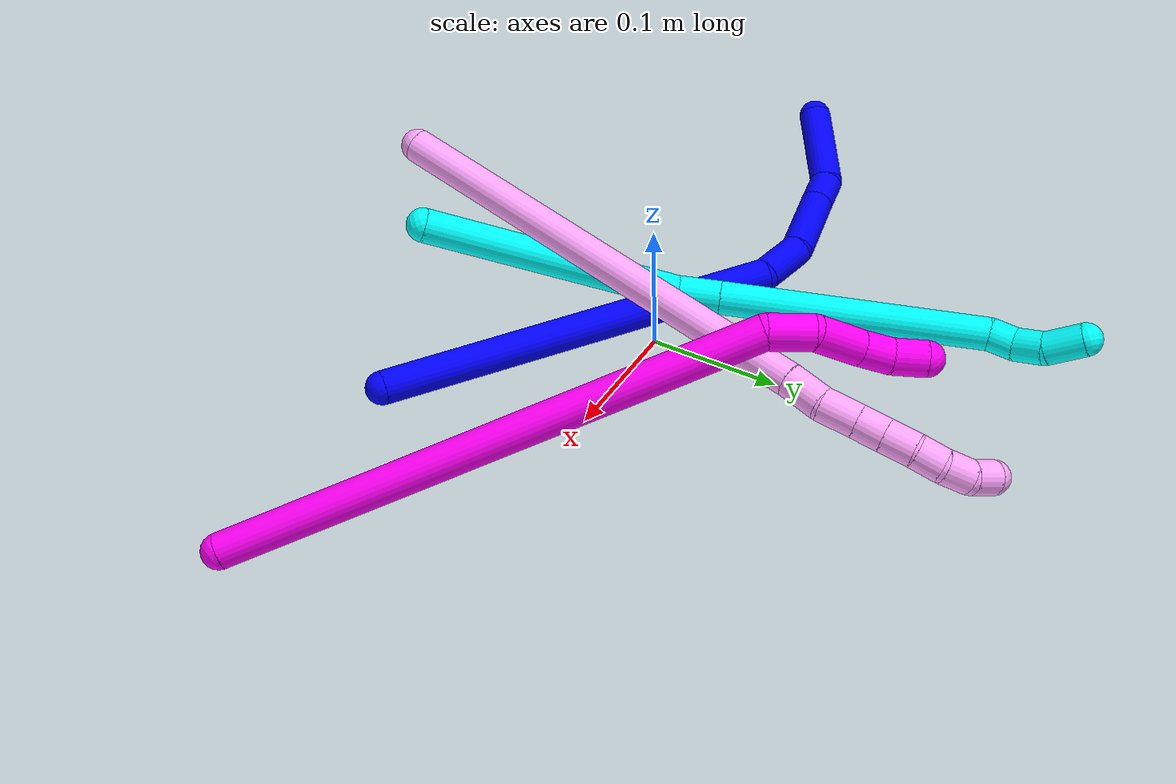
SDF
<sdf version="1.7">
 <world name="default">
  <model name="1">
   <static>0</static>
   <link name="1">
    <collision name="collision-cylinder-e_1_1_4">
     <pose>-0.103883 0.086547 -0.072348 -2.26707 -0.744257 1.39145</pose>
     <geometry><cylinder><radius>0.0125</radius><length>0.306699</length></cylinder></geometry>
     <surface>
      <friction><ode><mu>1.16</mu><mu2>1.16</mu2><slip1>0</slip1><slip2>0</slip2></ode></friction>
      <contact><ode><kp>1e+06</kp><kd>1</kd><max_vel>0</max_vel><min_depth>0.001</min_depth></ode></contact>
     </surface>
    </collision>
    <visual name="visual-cylinder-e_1_1_4">
     <pose>-0.103883 0.086547 -0.072348 -2.26707 -0.744257 1.39145</pose>
     <geometry><cylinder><radius>0.0125</radius><length>0.306699</length></cylinder></geometry>
     <material><ambient>0 0 1 1</ambient></material>
    </visual>
    <collision name="collision-cylinder-e_2_4_5">
     <pose>-0.225947 0.177052 -0.152843 -2.68928 -1.10852 2.42979</pose>
     <geometry><cylinder><radius>0.0125</radius><length>0.040625</length></cylinder></geometry>
     <surface>
      <friction><ode><mu>1.16</mu><mu2>1.16</mu2><slip1>0</slip1><slip2>0</slip2></ode></friction>
      <contact><ode><kp>1e+06</kp><kd>1</kd><max_vel>0</max_vel><min_depth>0.001</min_depth></ode></contact>
     </surface>
    </collision>
    <visual name="visual-cylinder-e_2_4_5">
     <pose>-0.225947 0.177052 -0.152843 -2.68928 -1.10852 2.42979</pose>
     <geometry><cylinder><radius>0.0125</radius><length>0.040625</length></cylinder></geometry>
     <material><ambient>0 0 1 1</ambient></material>
    </visual>
    <collision name="collision-cylinder-e_3_5_6">
     <pose>-0.272981 0.176731 -0.167923 2.58836 -1.29563 -2.4238</pose>
     <geometry><cylinder><radius>0.0125</radius><length>0.059963</length></cylinder></geometry>
     <surface>
      <friction><ode><mu>1.16</mu><mu2>1.16</mu2><slip1>0</slip1><slip2>0</slip2></ode></friction>
      <contact><ode><kp>1e+06</kp><kd>1</kd><max_vel>0</max_vel><min_depth>0.001</min_depth></ode></contact>
     </surface>
    </collision>
    <visual name="visual-cylinder-e_3_5_6">
     <pose>-0.272981 0.176731 -0.167923 2.58836 -1.29563 -2.4238</pose>
     <geometry><cylinder><radius>0.0125</radius><length>0.059963</length></cylinder></geometry>
     <material><ambient>0 0 1 1</ambient></material>
    </visual>
    <collision name="collision-cylinder-e_4_6_7">
     <pose>-0.313863 0.172143 -0.176282 2.92908 -1.44994 -2.90196</pose>
     <geometry><cylinder><radius>0.0125</radius><length>0.024234</length></cylinder></geometry>
     <surface>
      <friction><ode><mu>1.16</mu><mu2>1.16</mu2><slip1>0</slip1><slip2>0</slip2></ode></friction>
      <contact><ode><kp>1e+06</kp><kd>1</kd><max_vel>0</max_vel><min_depth>0.001</min_depth></ode></contact>
     </surface>
    </collision>
    <visual name="visual-cylinder-e_4_6_7">
     <pose>-0.313863 0.172143 -0.176282 2.92908 -1.44994 -2.90196</pose>
     <geometry><cylinder><radius>0.0125</radius><length>0.024234</length></cylinder></geometry>
     <material><ambient>0 0 1 1</ambient></material>
    </visual>
    <collision name="collision-cylinder-e_5_7_2">
     <pose>-0.356951 0.158446 -0.172378 1.19183 -1.13638 -0.817168</pose>
     <geometry><cylinder><radius>0.0125</radius><length>0.068478</length></cylinder></geometry>
     <surface>
      <friction><ode><mu>1.16</mu><mu2>1.16</mu2><slip1>0</slip1><slip2>0</slip2></ode></friction>
      <contact><ode><kp>1e+06</kp><kd>1</kd><max_vel>0</max_vel><min_depth>0.001</min_depth></ode></contact>
     </surface>
    </collision>
    <visual name="visual-cylinder-e_5_7_2">
     <pose>-0.356951 0.158446 -0.172378 1.19183 -1.13638 -0.817168</pose>
     <geometry><cylinder><radius>0.0125</radius><length>0.068478</length></cylinder></geometry>
     <material><ambient>0 0 1 1</ambient></material>
    </visual>
    <collision name="collision-sphere-2">
     <pose>-0.388009 0.145058 -0.167047 0 -0 0</pose>
     <geometry><sphere><radius>0.0125</radius></sphere></geometry>
     <surface>
      <friction><ode><mu>1.16</mu><mu2>1.16</mu2><slip1>0</slip1><slip2>0</slip2></ode></friction>
      <contact><ode><kp>1e+06</kp><kd>1</kd><max_vel>0</max_vel><min_depth>0.001</min_depth></ode></contact>
     </surface>
    </collision>
    <visual name="visual-sphere-2">
     <pose>-0.388009 0.145058 -0.167047 0 -0 0</pose>
     <geometry><sphere><radius>0.0125</radius></sphere></geometry>
     <material><ambient>0 0 1 1</ambient></material>
    </visual>
    <collision name="collision-sphere-7">
     <pose>-0.325892 0.171835 -0.17771 0 -0 0</pose>
     <geometry><sphere><radius>0.0125</radius></sphere></geometry>
     <surface>
      <friction><ode><mu>1.16</mu><mu2>1.16</mu2><slip1>0</slip1><slip2>0</slip2></ode></friction>
      <contact><ode><kp>1e+06</kp><kd>1</kd><max_vel>0</max_vel><min_depth>0.001</min_depth></ode></contact>
     </surface>
    </collision>
    <visual name="visual-sphere-7">
     <pose>-0.325892 0.171835 -0.17771 0 -0 0</pose>
     <geometry><sphere><radius>0.0125</radius></sphere></geometry>
     <material><ambient>0 0 1 1</ambient></material>
    </visual>
    <collision name="collision-sphere-6">
     <pose>-0.301835 0.172451 -0.174854 0 -0 0</pose>
     <geometry><sphere><radius>0.0125</radius></sphere></geometry>
     <surface>
      <friction><ode><mu>1.16</mu><mu2>1.16</mu2><slip1>0</slip1><slip2>0</slip2></ode></friction>
      <contact><ode><kp>1e+06</kp><kd>1</kd><max_vel>0</max_vel><min_depth>0.001</min_depth></ode></contact>
     </surface>
    </collision>
    <visual name="visual-sphere-6">
     <pose>-0.301835 0.172451 -0.174854 0 -0 0</pose>
     <geometry><sphere><radius>0.0125</radius></sphere></geometry>
     <material><ambient>0 0 1 1</ambient></material>
    </visual>
    <collision name="collision-sphere-5">
     <pose>-0.244127 0.181012 -0.160991 0 -0 0</pose>
     <geometry><sphere><radius>0.0125</radius></sphere></geometry>
     <surface>
      <friction><ode><mu>1.16</mu><mu2>1.16</mu2><slip1>0</slip1><slip2>0</slip2></ode></friction>
      <contact><ode><kp>1e+06</kp><kd>1</kd><max_vel>0</max_vel><min_depth>0.001</min_depth></ode></contact>
     </surface>
    </collision>
    <visual name="visual-sphere-5">
     <pose>-0.244127 0.181012 -0.160991 0 -0 0</pose>
     <geometry><sphere><radius>0.0125</radius></sphere></geometry>
     <material><ambient>0 0 1 1</ambient></material>
    </visual>
    <collision name="collision-sphere-1">
     <geometry><sphere><radius>0.0125</radius></sphere></geometry>
     <surface>
      <friction><ode><mu>1.16</mu><mu2>1.16</mu2><slip1>0</slip1><slip2>0</slip2></ode></friction>
      <contact><ode><kp>1e+06</kp><kd>1</kd><max_vel>0</max_vel><min_depth>0.001</min_depth></ode></contact>
     </surface>
    </collision>
    <visual name="visual-sphere-1">
     <geometry><sphere><radius>0.0125</radius></sphere></geometry>
     <material><ambient>0 0 1 1</ambient></material>
    </visual>
    <collision name="collision-sphere-4">
     <pose>-0.207766 0.173093 -0.144695 0 -0 0</pose>
     <geometry><sphere><radius>0.0125</radius></sphere></geometry>
     <surface>
      <friction><ode><mu>1.16</mu><mu2>1.16</mu2><slip1>0</slip1><slip2>0</slip2></ode></friction>
      <contact><ode><kp>1e+06</kp><kd>1</kd><max_vel>0</max_vel><min_depth>0.001</min_depth></ode></contact>
     </surface>
    </collision>
    <visual name="visual-sphere-4">
     <pose>-0.207766 0.173093 -0.144695 0 -0 0</pose>
     <geometry><sphere><radius>0.0125</radius></sphere></geometry>
     <material><ambient>0 0 1 1</ambient></material>
    </visual>
    <inertial>
     <pose>-0.178916 0.118712 -0.109087 0 -0 0</pose>
     <mass>0.5</mass>
     <inertia>
      <ixx>0.002027</ixx>
      <ixy>0</ixy>
      <ixz>0</ixz>
      <iyy>0.002763</iyy>
      <iyz>0</iyz>
      <izz>0.000328</izz>
     </inertia>
    </inertial>
   </link>
   <pose>0.150669 -0.138053 0.011497 0.383468 0.322485 0.149958</pose>
  </model>
  <model name="3">
   <static>0</static>
   <link name="3">
    <collision name="collision-cylinder-e_1_1_4">
     <pose>-0.018549 0.08649 0.03983 -1.13923 -0.192395 0.123439</pose>
     <geometry><cylinder><radius>0.0125</radius><length>0.194021</length></cylinder></geometry>
     <surface>
      <friction><ode><mu>1.16</mu><mu2>1.16</mu2><slip1>0</slip1><slip2>0</slip2></ode></friction>
      <contact><ode><kp>1e+06</kp><kd>1</kd><max_vel>0</max_vel><min_depth>0.001</min_depth></ode></contact>
     </surface>
    </collision>
    <visual name="visual-cylinder-e_1_1_4">
     <pose>-0.018549 0.08649 0.03983 -1.13923 -0.192395 0.123439</pose>
     <geometry><cylinder><radius>0.0125</radius><length>0.194021</length></cylinder></geometry>
     <material><ambient>0.003922 1 0.996078 1</ambient></material>
    </visual>
    <collision name="collision-cylinder-e_2_4_5">
     <pose>-0.045395 0.185314 0.086216 -1.08224 -0.535985 0.327093</pose>
     <geometry><cylinder><radius>0.0125</radius><length>0.032491</length></cylinder></geometry>
     <surface>
      <friction><ode><mu>1.16</mu><mu2>1.16</mu2><slip1>0</slip1><slip2>0</slip2></ode></friction>
      <contact><ode><kp>1e+06</kp><kd>1</kd><max_vel>0</max_vel><min_depth>0.001</min_depth></ode></contact>
     </surface>
    </collision>
    <visual name="visual-cylinder-e_2_4_5">
     <pose>-0.045395 0.185314 0.086216 -1.08224 -0.535985 0.327093</pose>
     <geometry><cylinder><radius>0.0125</radius><length>0.032491</length></cylinder></geometry>
     <material><ambient>0.003922 1 0.996078 1</ambient></material>
    </visual>
    <collision name="collision-cylinder-e_3_5_6">
     <pose>-0.103942 0.273684 0.133336 -1.08073 -0.527884 0.32146</pose>
     <geometry><cylinder><radius>0.0125</radius><length>0.199521</length></cylinder></geometry>
     <surface>
      <friction><ode><mu>1.16</mu><mu2>1.16</mu2><slip1>0</slip1><slip2>0</slip2></ode></friction>
      <contact><ode><kp>1e+06</kp><kd>1</kd><max_vel>0</max_vel><min_depth>0.001</min_depth></ode></contact>
     </surface>
    </collision>
    <visual name="visual-cylinder-e_3_5_6">
     <pose>-0.103942 0.273684 0.133336 -1.08073 -0.527884 0.32146</pose>
     <geometry><cylinder><radius>0.0125</radius><length>0.199521</length></cylinder></geometry>
     <material><ambient>0.003922 1 0.996078 1</ambient></material>
    </visual>
    <collision name="collision-cylinder-e_4_6_7">
     <pose>-0.159439 0.355457 0.180464 -0.718039 -0.541822 0.207712</pose>
     <geometry><cylinder><radius>0.0125</radius><length>0.020349</length></cylinder></geometry>
     <surface>
      <friction><ode><mu>1.16</mu><mu2>1.16</mu2><slip1>0</slip1><slip2>0</slip2></ode></friction>
      <contact><ode><kp>1e+06</kp><kd>1</kd><max_vel>0</max_vel><min_depth>0.001</min_depth></ode></contact>
     </surface>
    </collision>
    <visual name="visual-cylinder-e_4_6_7">
     <pose>-0.159439 0.355457 0.180464 -0.718039 -0.541822 0.207712</pose>
     <geometry><cylinder><radius>0.0125</radius><length>0.020349</length></cylinder></geometry>
     <material><ambient>0.003922 1 0.996078 1</ambient></material>
    </visual>
    <collision name="collision-cylinder-e_5_7_8">
     <pose>-0.173731 0.365841 0.192526 -0.701974 -0.898564 0.349489</pose>
     <geometry><cylinder><radius>0.0125</radius><length>0.02312</length></cylinder></geometry>
     <surface>
      <friction><ode><mu>1.16</mu><mu2>1.16</mu2><slip1>0</slip1><slip2>0</slip2></ode></friction>
      <contact><ode><kp>1e+06</kp><kd>1</kd><max_vel>0</max_vel><min_depth>0.001</min_depth></ode></contact>
     </surface>
    </collision>
    <visual name="visual-cylinder-e_5_7_8">
     <pose>-0.173731 0.365841 0.192526 -0.701974 -0.898564 0.349489</pose>
     <geometry><cylinder><radius>0.0125</radius><length>0.02312</length></cylinder></geometry>
     <material><ambient>0.003922 1 0.996078 1</ambient></material>
    </visual>
    <collision name="collision-cylinder-e_6_8_2">
     <pose>-0.195581 0.378505 0.200091 -1.31829 -0.996896 0.798112</pose>
     <geometry><cylinder><radius>0.0125</radius><length>0.030497</length></cylinder></geometry>
     <surface>
      <friction><ode><mu>1.16</mu><mu2>1.16</mu2><slip1>0</slip1><slip2>0</slip2></ode></friction>
      <contact><ode><kp>1e+06</kp><kd>1</kd><max_vel>0</max_vel><min_depth>0.001</min_depth></ode></contact>
     </surface>
    </collision>
    <visual name="visual-cylinder-e_6_8_2">
     <pose>-0.195581 0.378505 0.200091 -1.31829 -0.996896 0.798112</pose>
     <geometry><cylinder><radius>0.0125</radius><length>0.030497</length></cylinder></geometry>
     <material><ambient>0.003922 1 0.996078 1</ambient></material>
    </visual>
    <collision name="collision-sphere-2">
     <pose>-0.208387 0.386521 0.20216 0 -0 0</pose>
     <geometry><sphere><radius>0.0125</radius></sphere></geometry>
     <surface>
      <friction><ode><mu>1.16</mu><mu2>1.16</mu2><slip1>0</slip1><slip2>0</slip2></ode></friction>
      <contact><ode><kp>1e+06</kp><kd>1</kd><max_vel>0</max_vel><min_depth>0.001</min_depth></ode></contact>
     </surface>
    </collision>
    <visual name="visual-sphere-2">
     <pose>-0.208387 0.386521 0.20216 0 -0 0</pose>
     <geometry><sphere><radius>0.0125</radius></sphere></geometry>
     <material><ambient>0.003922 1 0.996078 1</ambient></material>
    </visual>
    <collision name="collision-sphere-4">
     <pose>-0.037099 0.17298 0.07966 0 -0 0</pose>
     <geometry><sphere><radius>0.0125</radius></sphere></geometry>
     <surface>
      <friction><ode><mu>1.16</mu><mu2>1.16</mu2><slip1>0</slip1><slip2>0</slip2></ode></friction>
      <contact><ode><kp>1e+06</kp><kd>1</kd><max_vel>0</max_vel><min_depth>0.001</min_depth></ode></contact>
     </surface>
    </collision>
    <visual name="visual-sphere-4">
     <pose>-0.037099 0.17298 0.07966 0 -0 0</pose>
     <geometry><sphere><radius>0.0125</radius></sphere></geometry>
     <material><ambient>0.003922 1 0.996078 1</ambient></material>
    </visual>
    <collision name="collision-sphere-1">
     <geometry><sphere><radius>0.0125</radius></sphere></geometry>
     <surface>
      <friction><ode><mu>1.16</mu><mu2>1.16</mu2><slip1>0</slip1><slip2>0</slip2></ode></friction>
      <contact><ode><kp>1e+06</kp><kd>1</kd><max_vel>0</max_vel><min_depth>0.001</min_depth></ode></contact>
     </surface>
    </collision>
    <visual name="visual-sphere-1">
     <geometry><sphere><radius>0.0125</radius></sphere></geometry>
     <material><ambient>0.003922 1 0.996078 1</ambient></material>
    </visual>
    <collision name="collision-sphere-8">
     <pose>-0.182776 0.370489 0.198023 0 -0 0</pose>
     <geometry><sphere><radius>0.0125</radius></sphere></geometry>
     <surface>
      <friction><ode><mu>1.16</mu><mu2>1.16</mu2><slip1>0</slip1><slip2>0</slip2></ode></friction>
      <contact><ode><kp>1e+06</kp><kd>1</kd><max_vel>0</max_vel><min_depth>0.001</min_depth></ode></contact>
     </surface>
    </collision>
    <visual name="visual-sphere-8">
     <pose>-0.182776 0.370489 0.198023 0 -0 0</pose>
     <geometry><sphere><radius>0.0125</radius></sphere></geometry>
     <material><ambient>0.003922 1 0.996078 1</ambient></material>
    </visual>
    <collision name="collision-sphere-5">
     <pose>-0.053692 0.197647 0.092772 0 -0 0</pose>
     <geometry><sphere><radius>0.0125</radius></sphere></geometry>
     <surface>
      <friction><ode><mu>1.16</mu><mu2>1.16</mu2><slip1>0</slip1><slip2>0</slip2></ode></friction>
      <contact><ode><kp>1e+06</kp><kd>1</kd><max_vel>0</max_vel><min_depth>0.001</min_depth></ode></contact>
     </surface>
    </collision>
    <visual name="visual-sphere-5">
     <pose>-0.053692 0.197647 0.092772 0 -0 0</pose>
     <geometry><sphere><radius>0.0125</radius></sphere></geometry>
     <material><ambient>0.003922 1 0.996078 1</ambient></material>
    </visual>
    <collision name="collision-sphere-6">
     <pose>-0.154192 0.349722 0.173899 0 -0 0</pose>
     <geometry><sphere><radius>0.0125</radius></sphere></geometry>
     <surface>
      <friction><ode><mu>1.16</mu><mu2>1.16</mu2><slip1>0</slip1><slip2>0</slip2></ode></friction>
      <contact><ode><kp>1e+06</kp><kd>1</kd><max_vel>0</max_vel><min_depth>0.001</min_depth></ode></contact>
     </surface>
    </collision>
    <visual name="visual-sphere-6">
     <pose>-0.154192 0.349722 0.173899 0 -0 0</pose>
     <geometry><sphere><radius>0.0125</radius></sphere></geometry>
     <material><ambient>0.003922 1 0.996078 1</ambient></material>
    </visual>
    <collision name="collision-sphere-7">
     <pose>-0.164686 0.361192 0.187029 0 -0 0</pose>
     <geometry><sphere><radius>0.0125</radius></sphere></geometry>
     <surface>
      <friction><ode><mu>1.16</mu><mu2>1.16</mu2><slip1>0</slip1><slip2>0</slip2></ode></friction>
      <contact><ode><kp>1e+06</kp><kd>1</kd><max_vel>0</max_vel><min_depth>0.001</min_depth></ode></contact>
     </surface>
    </collision>
    <visual name="visual-sphere-7">
     <pose>-0.164686 0.361192 0.187029 0 -0 0</pose>
     <geometry><sphere><radius>0.0125</radius></sphere></geometry>
     <material><ambient>0.003922 1 0.996078 1</ambient></material>
    </visual>
    <inertial>
     <pose>-0.078077 0.209285 0.102716 0 -0 0</pose>
     <mass>0.5</mass>
     <inertia>
      <ixx>0.0014</ixx>
      <ixy>0</ixy>
      <ixz>0</ixz>
      <iyy>0.000961</iyy>
      <iyz>0</iyz>
      <izz>-0.000588</izz>
     </inertia>
    </inertial>
   </link>
   <pose>0.07234 -0.147559 0.101695 -2.63337 0.877196 -1.6729</pose>
  </model>
  <model name="4">
   <static>0</static>
   <link name="4">
    <collision name="collision-cylinder-e_1_1_4">
     <pose>-0.012748 0.069365 0.153652 -0.424053 -0.075476 0.016255</pose>
     <geometry><cylinder><radius>0.0125</radius><length>0.33813</length></cylinder></geometry>
     <surface>
      <friction><ode><mu>1.16</mu><mu2>1.16</mu2><slip1>0</slip1><slip2>0</slip2></ode></friction>
      <contact><ode><kp>1e+06</kp><kd>1</kd><max_vel>0</max_vel><min_depth>0.001</min_depth></ode></contact>
     </surface>
    </collision>
    <visual name="visual-cylinder-e_1_1_4">
     <pose>-0.012748 0.069365 0.153652 -0.424053 -0.075476 0.016255</pose>
     <geometry><cylinder><radius>0.0125</radius><length>0.33813</length></cylinder></geometry>
     <material><ambient>1 0.65098 0.996078 1</ambient></material>
    </visual>
    <collision name="collision-cylinder-e_2_4_5">
     <pose>-0.027036 0.143763 0.320501 -0.364344 -0.108557 0.020017</pose>
     <geometry><cylinder><radius>0.0125</radius><length>0.028415</length></cylinder></geometry>
     <surface>
      <friction><ode><mu>1.16</mu><mu2>1.16</mu2><slip1>0</slip1><slip2>0</slip2></ode></friction>
      <contact><ode><kp>1e+06</kp><kd>1</kd><max_vel>0</max_vel><min_depth>0.001</min_depth></ode></contact>
     </surface>
    </collision>
    <visual name="visual-cylinder-e_2_4_5">
     <pose>-0.027036 0.143763 0.320501 -0.364344 -0.108557 0.020017</pose>
     <geometry><cylinder><radius>0.0125</radius><length>0.028415</length></cylinder></geometry>
     <material><ambient>1 0.65098 0.996078 1</ambient></material>
    </visual>
    <collision name="collision-cylinder-e_3_5_6">
     <pose>-0.027199 0.154962 0.345914 -0.467386 0.100214 -0.023874</pose>
     <geometry><cylinder><radius>0.0125</radius><length>0.027507</length></cylinder></geometry>
     <surface>
      <friction><ode><mu>1.16</mu><mu2>1.16</mu2><slip1>0</slip1><slip2>0</slip2></ode></friction>
      <contact><ode><kp>1e+06</kp><kd>1</kd><max_vel>0</max_vel><min_depth>0.001</min_depth></ode></contact>
     </surface>
    </collision>
    <visual name="visual-cylinder-e_3_5_6">
     <pose>-0.027199 0.154962 0.345914 -0.467386 0.100214 -0.023874</pose>
     <geometry><cylinder><radius>0.0125</radius><length>0.027507</length></cylinder></geometry>
     <material><ambient>1 0.65098 0.996078 1</ambient></material>
    </visual>
    <collision name="collision-cylinder-e_4_6_7">
     <pose>-0.024951 0.165587 0.367355 -0.450349 0.084957 -0.019471</pose>
     <geometry><cylinder><radius>0.0125</radius><length>0.020565</length></cylinder></geometry>
     <surface>
      <friction><ode><mu>1.16</mu><mu2>1.16</mu2><slip1>0</slip1><slip2>0</slip2></ode></friction>
      <contact><ode><kp>1e+06</kp><kd>1</kd><max_vel>0</max_vel><min_depth>0.001</min_depth></ode></contact>
     </surface>
    </collision>
    <visual name="visual-cylinder-e_4_6_7">
     <pose>-0.024951 0.165587 0.367355 -0.450349 0.084957 -0.019471</pose>
     <geometry><cylinder><radius>0.0125</radius><length>0.020565</length></cylinder></geometry>
     <material><ambient>1 0.65098 0.996078 1</ambient></material>
    </visual>
    <collision name="collision-cylinder-e_5_7_8">
     <pose>-0.023054 0.17519 0.386886 -0.462894 0.088679 -0.020912</pose>
     <geometry><cylinder><radius>0.0125</radius><length>0.02313</length></cylinder></geometry>
     <surface>
      <friction><ode><mu>1.16</mu><mu2>1.16</mu2><slip1>0</slip1><slip2>0</slip2></ode></friction>
      <contact><ode><kp>1e+06</kp><kd>1</kd><max_vel>0</max_vel><min_depth>0.001</min_depth></ode></contact>
     </surface>
    </collision>
    <visual name="visual-cylinder-e_5_7_8">
     <pose>-0.023054 0.17519 0.386886 -0.462894 0.088679 -0.020912</pose>
     <geometry><cylinder><radius>0.0125</radius><length>0.02313</length></cylinder></geometry>
     <material><ambient>1 0.65098 0.996078 1</ambient></material>
    </visual>
    <collision name="collision-cylinder-e_6_8_9">
     <pose>-0.019518 0.183663 0.406368 -0.348027 0.251858 -0.044503</pose>
     <geometry><cylinder><radius>0.0125</radius><length>0.020155</length></cylinder></geometry>
     <surface>
      <friction><ode><mu>1.16</mu><mu2>1.16</mu2><slip1>0</slip1><slip2>0</slip2></ode></friction>
      <contact><ode><kp>1e+06</kp><kd>1</kd><max_vel>0</max_vel><min_depth>0.001</min_depth></ode></contact>
     </surface>
    </collision>
    <visual name="visual-cylinder-e_6_8_9">
     <pose>-0.019518 0.183663 0.406368 -0.348027 0.251858 -0.044503</pose>
     <geometry><cylinder><radius>0.0125</radius><length>0.020155</length></cylinder></geometry>
     <material><ambient>1 0.65098 0.996078 1</ambient></material>
    </visual>
    <collision name="collision-cylinder-e_7_9_10">
     <pose>-0.011349 0.189893 0.424257 -0.321436 0.552043 -0.091775</pose>
     <geometry><cylinder><radius>0.0125</radius><length>0.021576</length></cylinder></geometry>
     <surface>
      <friction><ode><mu>1.16</mu><mu2>1.16</mu2><slip1>0</slip1><slip2>0</slip2></ode></friction>
      <contact><ode><kp>1e+06</kp><kd>1</kd><max_vel>0</max_vel><min_depth>0.001</min_depth></ode></contact>
     </surface>
    </collision>
    <visual name="visual-cylinder-e_7_9_10">
     <pose>-0.011349 0.189893 0.424257 -0.321436 0.552043 -0.091775</pose>
     <geometry><cylinder><radius>0.0125</radius><length>0.021576</length></cylinder></geometry>
     <material><ambient>1 0.65098 0.996078 1</ambient></material>
    </visual>
    <collision name="collision-cylinder-e_8_10_2">
     <pose>0.002639 0.196011 0.438026 -0.566707 0.947391 -0.296352</pose>
     <geometry><cylinder><radius>0.0125</radius><length>0.020522</length></cylinder></geometry>
     <surface>
      <friction><ode><mu>1.16</mu><mu2>1.16</mu2><slip1>0</slip1><slip2>0</slip2></ode></friction>
      <contact><ode><kp>1e+06</kp><kd>1</kd><max_vel>0</max_vel><min_depth>0.001</min_depth></ode></contact>
     </surface>
    </collision>
    <visual name="visual-cylinder-e_8_10_2">
     <pose>0.002639 0.196011 0.438026 -0.566707 0.947391 -0.296352</pose>
     <geometry><cylinder><radius>0.0125</radius><length>0.020522</length></cylinder></geometry>
     <material><ambient>1 0.65098 0.996078 1</ambient></material>
    </visual>
    <collision name="collision-sphere-2">
     <pose>0.01097 0.199227 0.44308 0 -0 0</pose>
     <geometry><sphere><radius>0.0125</radius></sphere></geometry>
     <surface>
      <friction><ode><mu>1.16</mu><mu2>1.16</mu2><slip1>0</slip1><slip2>0</slip2></ode></friction>
      <contact><ode><kp>1e+06</kp><kd>1</kd><max_vel>0</max_vel><min_depth>0.001</min_depth></ode></contact>
     </surface>
    </collision>
    <visual name="visual-sphere-2">
     <pose>0.01097 0.199227 0.44308 0 -0 0</pose>
     <geometry><sphere><radius>0.0125</radius></sphere></geometry>
     <material><ambient>1 0.65098 0.996078 1</ambient></material>
    </visual>
    <collision name="collision-sphere-10">
     <pose>-0.005692 0.192795 0.432972 0 -0 0</pose>
     <geometry><sphere><radius>0.0125</radius></sphere></geometry>
     <surface>
      <friction><ode><mu>1.16</mu><mu2>1.16</mu2><slip1>0</slip1><slip2>0</slip2></ode></friction>
      <contact><ode><kp>1e+06</kp><kd>1</kd><max_vel>0</max_vel><min_depth>0.001</min_depth></ode></contact>
     </surface>
    </collision>
    <visual name="visual-sphere-10">
     <pose>-0.005692 0.192795 0.432972 0 -0 0</pose>
     <geometry><sphere><radius>0.0125</radius></sphere></geometry>
     <material><ambient>1 0.65098 0.996078 1</ambient></material>
    </visual>
    <collision name="collision-sphere-9">
     <pose>-0.017007 0.186991 0.415542 0 -0 0</pose>
     <geometry><sphere><radius>0.0125</radius></sphere></geometry>
     <surface>
      <friction><ode><mu>1.16</mu><mu2>1.16</mu2><slip1>0</slip1><slip2>0</slip2></ode></friction>
      <contact><ode><kp>1e+06</kp><kd>1</kd><max_vel>0</max_vel><min_depth>0.001</min_depth></ode></contact>
     </surface>
    </collision>
    <visual name="visual-sphere-9">
     <pose>-0.017007 0.186991 0.415542 0 -0 0</pose>
     <geometry><sphere><radius>0.0125</radius></sphere></geometry>
     <material><ambient>1 0.65098 0.996078 1</ambient></material>
    </visual>
    <collision name="collision-sphere-4">
     <pose>-0.025497 0.13873 0.307304 0 -0 0</pose>
     <geometry><sphere><radius>0.0125</radius></sphere></geometry>
     <surface>
      <friction><ode><mu>1.16</mu><mu2>1.16</mu2><slip1>0</slip1><slip2>0</slip2></ode></friction>
      <contact><ode><kp>1e+06</kp><kd>1</kd><max_vel>0</max_vel><min_depth>0.001</min_depth></ode></contact>
     </surface>
    </collision>
    <visual name="visual-sphere-4">
     <pose>-0.025497 0.13873 0.307304 0 -0 0</pose>
     <geometry><sphere><radius>0.0125</radius></sphere></geometry>
     <material><ambient>1 0.65098 0.996078 1</ambient></material>
    </visual>
    <collision name="collision-sphere-1">
     <geometry><sphere><radius>0.0125</radius></sphere></geometry>
     <surface>
      <friction><ode><mu>1.16</mu><mu2>1.16</mu2><slip1>0</slip1><slip2>0</slip2></ode></friction>
      <contact><ode><kp>1e+06</kp><kd>1</kd><max_vel>0</max_vel><min_depth>0.001</min_depth></ode></contact>
     </surface>
    </collision>
    <visual name="visual-sphere-1">
     <geometry><sphere><radius>0.0125</radius></sphere></geometry>
     <material><ambient>1 0.65098 0.996078 1</ambient></material>
    </visual>
    <collision name="collision-sphere-8">
     <pose>-0.02203 0.180334 0.397194 0 -0 0</pose>
     <geometry><sphere><radius>0.0125</radius></sphere></geometry>
     <surface>
      <friction><ode><mu>1.16</mu><mu2>1.16</mu2><slip1>0</slip1><slip2>0</slip2></ode></friction>
      <contact><ode><kp>1e+06</kp><kd>1</kd><max_vel>0</max_vel><min_depth>0.001</min_depth></ode></contact>
     </surface>
    </collision>
    <visual name="visual-sphere-8">
     <pose>-0.02203 0.180334 0.397194 0 -0 0</pose>
     <geometry><sphere><radius>0.0125</radius></sphere></geometry>
     <material><ambient>1 0.65098 0.996078 1</ambient></material>
    </visual>
    <collision name="collision-sphere-5">
     <pose>-0.028575 0.148796 0.333698 0 -0 0</pose>
     <geometry><sphere><radius>0.0125</radius></sphere></geometry>
     <surface>
      <friction><ode><mu>1.16</mu><mu2>1.16</mu2><slip1>0</slip1><slip2>0</slip2></ode></friction>
      <contact><ode><kp>1e+06</kp><kd>1</kd><max_vel>0</max_vel><min_depth>0.001</min_depth></ode></contact>
     </surface>
    </collision>
    <visual name="visual-sphere-5">
     <pose>-0.028575 0.148796 0.333698 0 -0 0</pose>
     <geometry><sphere><radius>0.0125</radius></sphere></geometry>
     <material><ambient>1 0.65098 0.996078 1</ambient></material>
    </visual>
    <collision name="collision-sphere-6">
     <pose>-0.025823 0.161127 0.358131 0 -0 0</pose>
     <geometry><sphere><radius>0.0125</radius></sphere></geometry>
     <surface>
      <friction><ode><mu>1.16</mu><mu2>1.16</mu2><slip1>0</slip1><slip2>0</slip2></ode></friction>
      <contact><ode><kp>1e+06</kp><kd>1</kd><max_vel>0</max_vel><min_depth>0.001</min_depth></ode></contact>
     </surface>
    </collision>
    <visual name="visual-sphere-6">
     <pose>-0.025823 0.161127 0.358131 0 -0 0</pose>
     <geometry><sphere><radius>0.0125</radius></sphere></geometry>
     <material><ambient>1 0.65098 0.996078 1</ambient></material>
    </visual>
    <collision name="collision-sphere-7">
     <pose>-0.024078 0.170046 0.376579 0 -0 0</pose>
     <geometry><sphere><radius>0.0125</radius></sphere></geometry>
     <surface>
      <friction><ode><mu>1.16</mu><mu2>1.16</mu2><slip1>0</slip1><slip2>0</slip2></ode></friction>
      <contact><ode><kp>1e+06</kp><kd>1</kd><max_vel>0</max_vel><min_depth>0.001</min_depth></ode></contact>
     </surface>
    </collision>
    <visual name="visual-sphere-7">
     <pose>-0.024078 0.170046 0.376579 0 -0 0</pose>
     <geometry><sphere><radius>0.0125</radius></sphere></geometry>
     <material><ambient>1 0.65098 0.996078 1</ambient></material>
    </visual>
    <inertial>
     <pose>-0.014915 0.102162 0.226826 0 -0 0</pose>
     <mass>0.5</mass>
     <inertia>
      <ixx>0.003291</ixx>
      <ixy>0</ixy>
      <ixz>0</ixz>
      <iyy>0.00303</iyy>
      <iyz>0</iyz>
      <izz>-0.001057</izz>
     </inertia>
    </inertial>
   </link>
   <pose>0.006347 -0.195965 0.113918 2.21413 0.421819 -3.11217</pose>
  </model>
  <model name="10">
   <static>0</static>
   <link name="10">
    <collision name="collision-cylinder-e_1_1_4">
     <pose>-0.052563 0.048195 -0.178375 -2.87771 -0.277154 1.62043</pose>
     <geometry><cylinder><radius>0.0125</radius><length>0.384203</length></cylinder></geometry>
     <surface>
      <friction><ode><mu>1.16</mu><mu2>1.16</mu2><slip1>0</slip1><slip2>0</slip2></ode></friction>
      <contact><ode><kp>1e+06</kp><kd>1</kd><max_vel>0</max_vel><min_depth>0.001</min_depth></ode></contact>
     </surface>
    </collision>
    <visual name="visual-cylinder-e_1_1_4">
     <pose>-0.052563 0.048195 -0.178375 -2.87771 -0.277154 1.62043</pose>
     <geometry><cylinder><radius>0.0125</radius><length>0.384203</length></cylinder></geometry>
     <material><ambient>1 0 0.964706 1</ambient></material>
    </visual>
    <collision name="collision-cylinder-e_2_4_5">
     <pose>-0.10598 0.10607 -0.369846 -2.50508 -0.0524 0.158753</pose>
     <geometry><cylinder><radius>0.0125</radius><length>0.032618</length></cylinder></geometry>
     <surface>
      <friction><ode><mu>1.16</mu><mu2>1.16</mu2><slip1>0</slip1><slip2>0</slip2></ode></friction>
      <contact><ode><kp>1e+06</kp><kd>1</kd><max_vel>0</max_vel><min_depth>0.001</min_depth></ode></contact>
     </surface>
    </collision>
    <visual name="visual-cylinder-e_2_4_5">
     <pose>-0.10598 0.10607 -0.369846 -2.50508 -0.0524 0.158753</pose>
     <geometry><cylinder><radius>0.0125</radius><length>0.032618</length></cylinder></geometry>
     <material><ambient>1 0 0.964706 1</ambient></material>
    </visual>
    <collision name="collision-cylinder-e_3_5_6">
     <pose>-0.100643 0.1286 -0.394291 -2.29422 0.346614 -0.740527</pose>
     <geometry><cylinder><radius>0.0125</radius><length>0.036451</length></cylinder></geometry>
     <surface>
      <friction><ode><mu>1.16</mu><mu2>1.16</mu2><slip1>0</slip1><slip2>0</slip2></ode></friction>
      <contact><ode><kp>1e+06</kp><kd>1</kd><max_vel>0</max_vel><min_depth>0.001</min_depth></ode></contact>
     </surface>
    </collision>
    <visual name="visual-cylinder-e_3_5_6">
     <pose>-0.100643 0.1286 -0.394291 -2.29422 0.346614 -0.740527</pose>
     <geometry><cylinder><radius>0.0125</radius><length>0.036451</length></cylinder></geometry>
     <material><ambient>1 0 0.964706 1</ambient></material>
    </visual>
    <collision name="collision-cylinder-e_4_6_7">
     <pose>-0.093787 0.150091 -0.412998 -2.27618 0.058441 -0.126391</pose>
     <geometry><cylinder><radius>0.0125</radius><length>0.022743</length></cylinder></geometry>
     <surface>
      <friction><ode><mu>1.16</mu><mu2>1.16</mu2><slip1>0</slip1><slip2>0</slip2></ode></friction>
      <contact><ode><kp>1e+06</kp><kd>1</kd><max_vel>0</max_vel><min_depth>0.001</min_depth></ode></contact>
     </surface>
    </collision>
    <visual name="visual-cylinder-e_4_6_7">
     <pose>-0.093787 0.150091 -0.412998 -2.27618 0.058441 -0.126391</pose>
     <geometry><cylinder><radius>0.0125</radius><length>0.022743</length></cylinder></geometry>
     <material><ambient>1 0 0.964706 1</ambient></material>
    </visual>
    <collision name="collision-cylinder-e_5_7_2">
     <pose>-0.094459 0.166495 -0.429402 -2.4324 -0.11171 0.299767</pose>
     <geometry><cylinder><radius>0.0125</radius><length>0.023984</length></cylinder></geometry>
     <surface>
      <friction><ode><mu>1.16</mu><mu2>1.16</mu2><slip1>0</slip1><slip2>0</slip2></ode></friction>
      <contact><ode><kp>1e+06</kp><kd>1</kd><max_vel>0</max_vel><min_depth>0.001</min_depth></ode></contact>
     </surface>
    </collision>
    <visual name="visual-cylinder-e_5_7_2">
     <pose>-0.094459 0.166495 -0.429402 -2.4324 -0.11171 0.299767</pose>
     <geometry><cylinder><radius>0.0125</radius><length>0.023984</length></cylinder></geometry>
     <material><ambient>1 0 0.964706 1</ambient></material>
    </visual>
    <collision name="collision-sphere-2">
     <pose>-0.095796 0.174256 -0.438445 0 -0 0</pose>
     <geometry><sphere><radius>0.0125</radius></sphere></geometry>
     <surface>
      <friction><ode><mu>1.16</mu><mu2>1.16</mu2><slip1>0</slip1><slip2>0</slip2></ode></friction>
      <contact><ode><kp>1e+06</kp><kd>1</kd><max_vel>0</max_vel><min_depth>0.001</min_depth></ode></contact>
     </surface>
    </collision>
    <visual name="visual-sphere-2">
     <pose>-0.095796 0.174256 -0.438445 0 -0 0</pose>
     <geometry><sphere><radius>0.0125</radius></sphere></geometry>
     <material><ambient>1 0 0.964706 1</ambient></material>
    </visual>
    <collision name="collision-sphere-7">
     <pose>-0.093123 0.158734 -0.420358 0 -0 0</pose>
     <geometry><sphere><radius>0.0125</radius></sphere></geometry>
     <surface>
      <friction><ode><mu>1.16</mu><mu2>1.16</mu2><slip1>0</slip1><slip2>0</slip2></ode></friction>
      <contact><ode><kp>1e+06</kp><kd>1</kd><max_vel>0</max_vel><min_depth>0.001</min_depth></ode></contact>
     </surface>
    </collision>
    <visual name="visual-sphere-7">
     <pose>-0.093123 0.158734 -0.420358 0 -0 0</pose>
     <geometry><sphere><radius>0.0125</radius></sphere></geometry>
     <material><ambient>1 0 0.964706 1</ambient></material>
    </visual>
    <collision name="collision-sphere-6">
     <pose>-0.094451 0.141448 -0.405638 0 -0 0</pose>
     <geometry><sphere><radius>0.0125</radius></sphere></geometry>
     <surface>
      <friction><ode><mu>1.16</mu><mu2>1.16</mu2><slip1>0</slip1><slip2>0</slip2></ode></friction>
      <contact><ode><kp>1e+06</kp><kd>1</kd><max_vel>0</max_vel><min_depth>0.001</min_depth></ode></contact>
     </surface>
    </collision>
    <visual name="visual-sphere-6">
     <pose>-0.094451 0.141448 -0.405638 0 -0 0</pose>
     <geometry><sphere><radius>0.0125</radius></sphere></geometry>
     <material><ambient>1 0 0.964706 1</ambient></material>
    </visual>
    <collision name="collision-sphere-5">
     <pose>-0.106834 0.115751 -0.382944 0 -0 0</pose>
     <geometry><sphere><radius>0.0125</radius></sphere></geometry>
     <surface>
      <friction><ode><mu>1.16</mu><mu2>1.16</mu2><slip1>0</slip1><slip2>0</slip2></ode></friction>
      <contact><ode><kp>1e+06</kp><kd>1</kd><max_vel>0</max_vel><min_depth>0.001</min_depth></ode></contact>
     </surface>
    </collision>
    <visual name="visual-sphere-5">
     <pose>-0.106834 0.115751 -0.382944 0 -0 0</pose>
     <geometry><sphere><radius>0.0125</radius></sphere></geometry>
     <material><ambient>1 0 0.964706 1</ambient></material>
    </visual>
    <collision name="collision-sphere-1">
     <geometry><sphere><radius>0.0125</radius></sphere></geometry>
     <surface>
      <friction><ode><mu>1.16</mu><mu2>1.16</mu2><slip1>0</slip1><slip2>0</slip2></ode></friction>
      <contact><ode><kp>1e+06</kp><kd>1</kd><max_vel>0</max_vel><min_depth>0.001</min_depth></ode></contact>
     </surface>
    </collision>
    <visual name="visual-sphere-1">
     <geometry><sphere><radius>0.0125</radius></sphere></geometry>
     <material><ambient>1 0 0.964706 1</ambient></material>
    </visual>
    <collision name="collision-sphere-4">
     <pose>-0.105126 0.09639 -0.356749 0 -0 0</pose>
     <geometry><sphere><radius>0.0125</radius></sphere></geometry>
     <surface>
      <friction><ode><mu>1.16</mu><mu2>1.16</mu2><slip1>0</slip1><slip2>0</slip2></ode></friction>
      <contact><ode><kp>1e+06</kp><kd>1</kd><max_vel>0</max_vel><min_depth>0.001</min_depth></ode></contact>
     </surface>
    </collision>
    <visual name="visual-sphere-4">
     <pose>-0.105126 0.09639 -0.356749 0 -0 0</pose>
     <geometry><sphere><radius>0.0125</radius></sphere></geometry>
     <material><ambient>1 0 0.964706 1</ambient></material>
    </visual>
    <inertial>
     <pose>-0.063438 0.068142 -0.22932 0 -0 0</pose>
     <mass>0.5</mass>
     <inertia><ixx>0.00433</ixx><ixy>0</ixy><ixz>0</ixz><iyy>0.005123</iyy><iyz>0</iyz><izz>6.3e-05</izz></inertia>
    </inertial>
   </link>
   <pose>0.334848 -0.137667 0.011486 -1.99482 0.847264 -2.33881</pose>
  </model>
 </world>
</sdf>
